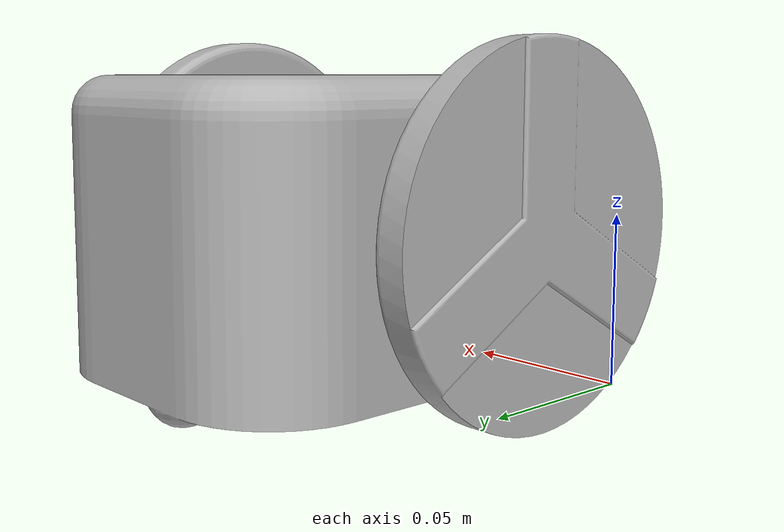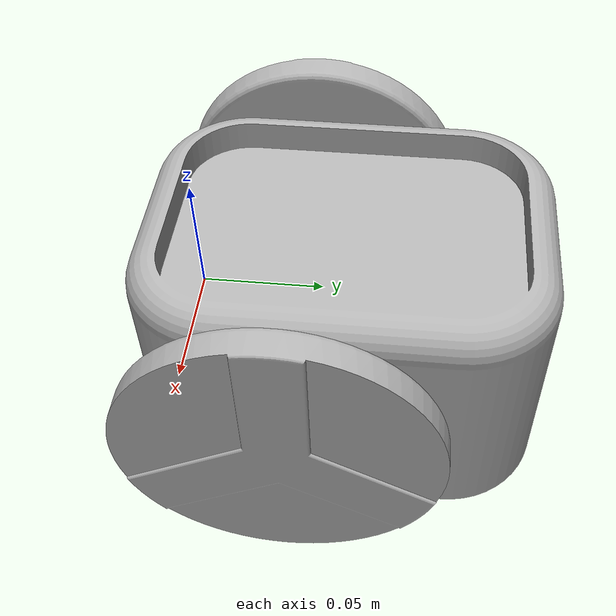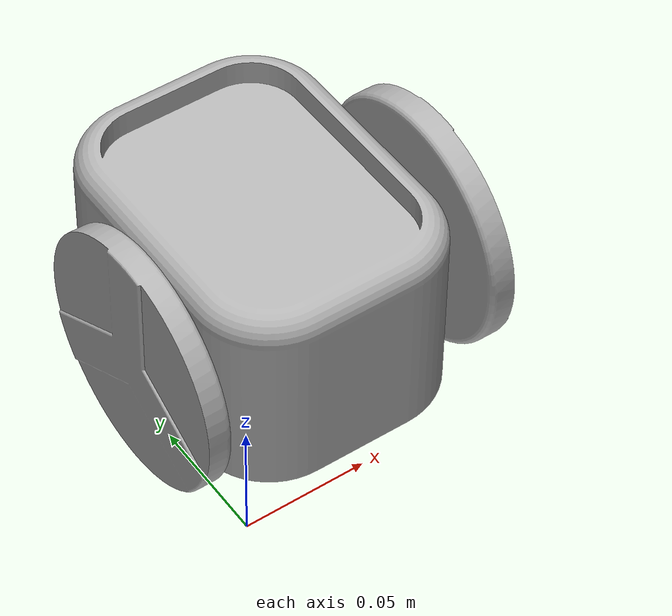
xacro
<?xml version="1.0" ?>
<robot name="assemblynew" xmlns:xacro="http://www.ros.org/wiki/xacro">

<xacro:include filename="$(find assemblynew_description)/urdf/materials.xacro" />
<xacro:include filename="$(find assemblynew_description)/urdf/assemblynew.trans" />
<xacro:include filename="$(find assemblynew_description)/urdf/assemblynew.gazebo" />
<link name="base_link">
  <inertial>
    <origin rpy="0 0 0" xyz="0.050000000000007615 0.06551376525960273 0.04597336264626215"/>
    <mass value="6.750210724511362"/>
    <inertia ixx="0.012206" ixy="0.0" ixz="0.0" iyy="0.008271" iyz="-1.4e-05" izz="0.014224"/>
  </inertial>
  <visual>
    <origin rpy="0 0 0" xyz="0 0 0"/>
    <geometry>
      <mesh filename="package://assemblynew_description/meshes/base_link.stl" scale="0.001 0.001 0.001"/>
    </geometry>
    <material name="silver"/>
  </visual>
  <collision>
    <origin rpy="0 0 0" xyz="0 0 0"/>
    <geometry>
      <mesh filename="package://assemblynew_description/meshes/base_link.stl" scale="0.001 0.001 0.001"/>
    </geometry>
  </collision>
</link>

<link name="right_wheel_1">
  <inertial>
    <origin rpy="0 0 0" xyz="0.03622966936197468 -9.454708300993264e-09 4.8840207850231465e-09"/>
    <mass value="0.7696472579776161"/>
    <inertia ixx="0.000792" ixy="-0.0" ixz="0.0" iyy="0.000473" iyz="-0.0" izz="0.000473"/>
  </inertial>
  <visual>
    <origin rpy="0 0 0" xyz="-0.07 -0.05 -0.05"/>
    <geometry>
      <mesh filename="package://assemblynew_description/meshes/right_wheel_1.stl" scale="0.001 0.001 0.001"/>
    </geometry>
    <material name="silver"/>
  </visual>
  <collision>
    <origin rpy="0 0 0" xyz="-0.07 -0.05 -0.05"/>
    <geometry>
      <mesh filename="package://assemblynew_description/meshes/right_wheel_1.stl" scale="0.001 0.001 0.001"/>
    </geometry>
  </collision>
</link>

<link name="left_wheel_1">
  <inertial>
    <origin rpy="0 0 0" xyz="-0.0362296679337779 2.0167591208153368e-10 1.3548774532856633e-09"/>
    <mass value="0.7696472585080372"/>
    <inertia ixx="0.000792" ixy="0.0" ixz="0.0" iyy="0.000473" iyz="-0.0" izz="0.000473"/>
  </inertial>
  <visual>
    <origin rpy="0 0 0" xyz="-0.03 -0.05 -0.05"/>
    <geometry>
      <mesh filename="package://assemblynew_description/meshes/left_wheel_1.stl" scale="0.001 0.001 0.001"/>
    </geometry>
    <material name="silver"/>
  </visual>
  <collision>
    <origin rpy="0 0 0" xyz="-0.03 -0.05 -0.05"/>
    <geometry>
      <mesh filename="package://assemblynew_description/meshes/left_wheel_1.stl" scale="0.001 0.001 0.001"/>
    </geometry>
  </collision>
</link>

<joint name="Rev3" type="continuous">
  <origin rpy="0 0 0" xyz="0.07 0.05 0.05"/>
  <parent link="base_link"/>
  <child link="right_wheel_1"/>
  <axis xyz="-1.0 0.0 0.0"/>
</joint>

<joint name="Rev4" type="continuous">
  <origin rpy="0 0 0" xyz="0.03 0.05 0.05"/>
  <parent link="base_link"/>
  <child link="left_wheel_1"/>
  <axis xyz="-1.0 0.0 0.0"/>
</joint>

</robot>

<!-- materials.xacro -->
<robot name="assemblynew" xmlns:xacro="http://www.ros.org/wiki/xacro" >

<material name="silver">
  <color rgba="0.700 0.700 0.700 1.000"/>
</material>

</robot>

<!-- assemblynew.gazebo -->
<robot name="assemblynew" xmlns:xacro="http://www.ros.org/wiki/xacro" >

<xacro:property name="body_color" value="Gazebo/Silver" />

<gazebo>
  <plugin filename="libgazebo_ros_control.so" name="control"/>
</gazebo>
<gazebo reference="base_link">
  <material>${body_color}</material>
  <mu1>0.2</mu1>
  <mu2>0.2</mu2>
  <selfCollide>true</selfCollide>
  <gravity>true</gravity>
</gazebo>

<gazebo reference="right_wheel_1">
  <material>${body_color}</material>
  <mu1>1500</mu1>
  <mu2>1500</mu2>
  <selfCollide>true</selfCollide>
</gazebo>

<gazebo reference="left_wheel_1">
  <material>${body_color}</material>
  <mu1>1500</mu1>
  <mu2>1500</mu2>
  <selfCollide>true</selfCollide>
</gazebo>

<gazebo>
  <plugin name="differential_drive_controller" filename="libgazebo_ros_diff_drive.so">

    <!-- Plugin update rate in Hz -->
    <updateRate>100</updateRate>

    <!-- Name of left joint, defaults to `left_joint` -->
    <leftJoint>Rev4</leftJoint>

    <!-- Name of right joint, defaults to `right_joint` -->
    <rightJoint>Rev3</rightJoint>

    <!-- The distance from the center of one wheel to the other, in meters, defaults to 0.34 m -->

    <!-- Diameter of the wheels, in meters, defaults to 0.15 m -->

    <!-- Wheel acceleration, in rad/s^2, defaults to 0.0 rad/s^2 -->
    <wheelAcceleration>1.0</wheelAcceleration>

    <!-- Maximum torque which the wheels can produce, in Nm, defaults to 5 Nm -->
    <wheelTorque>20</wheelTorque>

    <!-- Topic to receive geometry_msgs/Twist message commands, defaults to `cmd_vel` -->
    <commandTopic>cmd_vel</commandTopic>

    <!-- Topic to publish nav_msgs/Odometry messages, defaults to `odom` -->
    <odometryTopic>odom</odometryTopic>

    <!-- Odometry frame, defaults to `odom` -->
    <odometryFrame>odom</odometryFrame>

    <!-- Robot frame to calculate odometry from, defaults to `base_footprint` -->
    <robotBaseFrame>base_link</robotBaseFrame>

    <!-- Odometry source, 0 for ENCODER, 1 for WORLD, defaults to WORLD -->
    <odometrySource>1</odometrySource>

    <!-- Set to true to publish transforms for the wheel links, defaults to false -->
    <publishWheelTF>true</publishWheelTF>

    <!-- Set to true to publish transforms for the odometry, defaults to true -->
    <publishOdom>true</publishOdom>

    <!-- Set to true to publish sensor_msgs/JointState on /joint_states for the wheel joints, defaults to false -->
    <publishWheelJointState>true</publishWheelJointState>

    <!-- Set to true to swap right and left wheels, defaults to true -->
    <legacyMode>false</legacyMode>
  </plugin>
</gazebo>

</robot>
